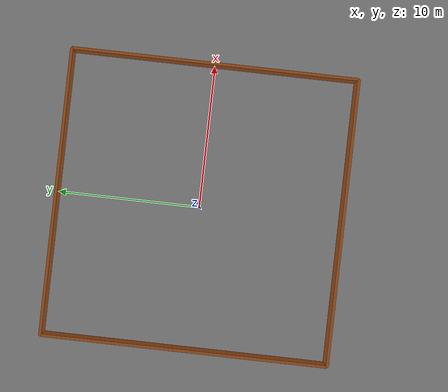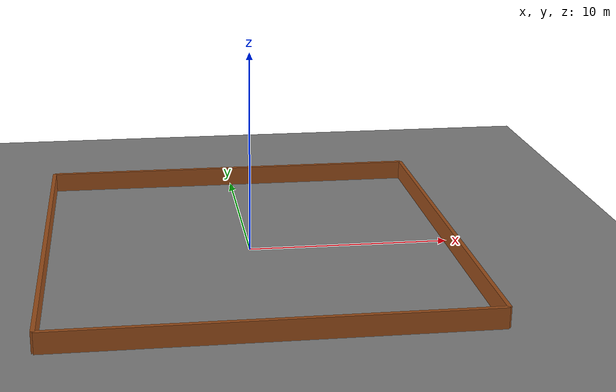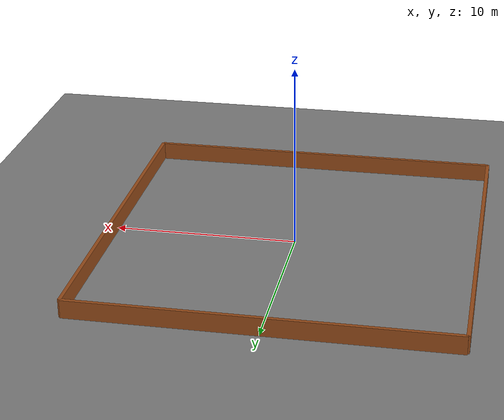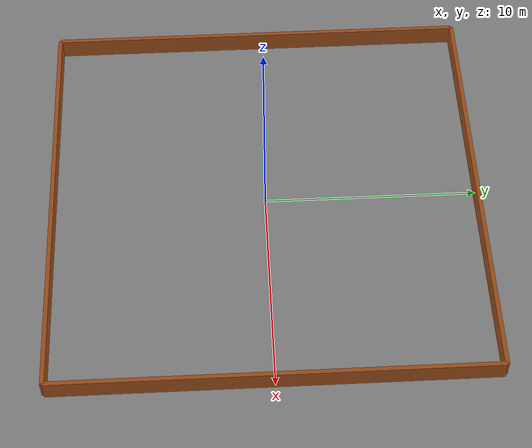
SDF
<?xml version="1.0" ?>
<!--
  Navigation Testbed World - Starter Template
  Module 2 Mini-Project 1

  TODO: Complete this world file to create a navigation testbed
-->
<sdf version="1.8">
  <world name="navigation_testbed">

    <!-- Physics Configuration -->
    <physics name="1ms" type="ignored">
      <max_step_size>0.001</max_step_size>
      <real_time_factor>1.0</real_time_factor>
    </physics>

    <!-- Plugins for ROS 2 Integration -->
    <plugin
      filename="gz-sim-physics-system"
      name="gz::sim::systems::Physics">
    </plugin>
    <plugin
      filename="gz-sim-user-commands-system"
      name="gz::sim::systems::UserCommands">
    </plugin>
    <plugin
      filename="gz-sim-scene-broadcaster-system"
      name="gz::sim::systems::SceneBroadcaster">
    </plugin>
    <plugin
      filename="gz-sim-sensors-system"
      name="gz::sim::systems::Sensors">
      <render_engine>ogre2</render_engine>
    </plugin>

    <!-- Lighting -->
    <light type="directional" name="sun">
      <cast_shadows>true</cast_shadows>
      <pose>0 0 10 0 0 0</pose>
      <diffuse>0.8 0.8 0.8 1</diffuse>
      <specular>0.2 0.2 0.2 1</specular>
      <direction>-0.5 0.1 -0.9</direction>
    </light>

    <!-- Ground Plane -->
    <model name="ground_plane">
      <static>true</static>
      <link name="link">
        <collision name="collision">
          <geometry>
            <plane>
              <normal>0 0 1</normal>
              <size>30 30</size>
            </plane>
          </geometry>
          <surface>
            <friction>
              <ode>
                <mu>0.8</mu>
                <mu2>0.8</mu2>
              </ode>
            </friction>
          </surface>
        </collision>
        <visual name="visual">
          <geometry>
            <plane>
              <normal>0 0 1</normal>
              <size>30 30</size>
            </plane>
          </geometry>
          <material>
            <ambient>0.3 0.3 0.3 1</ambient>
            <diffuse>0.5 0.5 0.5 1</diffuse>
          </material>
        </visual>
      </link>
    </model>

    <!-- TODO: Add Start Position Marker (Green) -->
    <!--
    Create a visual-only marker at position (-8, 0, 0)
    Use a cylinder (radius 0.3, height 0.1) with green color
    Set static=true and no collision
    -->

    <!-- TODO: Add Waypoint 1 Marker (Yellow) -->
    <!--
    Create a visual-only marker at position (-3, 3, 0)
    Use a cylinder (radius 0.3, height 0.1) with yellow color
    -->

    <!-- TODO: Add Waypoint 2 Marker (Yellow) -->
    <!--
    Create a visual-only marker at position (3, -2, 0)
    Use a cylinder (radius 0.3, height 0.1) with yellow color
    -->

    <!-- TODO: Add Goal Position Marker (Red) -->
    <!--
    Create a visual-only marker at position (8, 0, 0)
    Use a cylinder (radius 0.3, height 0.1) with red color
    -->

    <!-- TODO: Add Static Obstacle 1 - Box -->
    <!--
    Create a box obstacle at position (-5, 2, 0.5)
    Size: 1.0 x 1.0 x 1.0
    Include both collision and visual
    Set static=true
    -->

    <!-- TODO: Add Static Obstacle 2 - Cylinder -->
    <!--
    Create a cylinder obstacle at position (0, 0, 0.75)
    Radius: 0.5, Height: 1.5
    Include both collision and visual
    Set static=true
    -->

    <!-- TODO: Add Static Obstacle 3 - Wall -->
    <!--
    Create a wall at position (4, 3, 0.5)
    Size: 3.0 x 0.2 x 1.0
    Include both collision and visual
    Set static=true
    -->

    <!-- TODO: Add Static Obstacle 4 - Box -->
    <!--
    Create a box obstacle at position (6, -3, 0.4)
    Size: 0.8 x 0.8 x 0.8
    Include both collision and visual
    Set static=true
    -->

    <!-- TODO: Add Static Obstacle 5 - Cylinder -->
    <!--
    Create a cylinder obstacle at position (-2, -4, 0.5)
    Radius: 0.4, Height: 1.0
    Include both collision and visual
    Set static=true
    -->

    <!-- Boundary Walls (already implemented) -->
    <model name="boundary_north">
      <static>true</static>
      <pose>0 10 0.5 0 0 0</pose>
      <link name="link">
        <collision name="collision">
          <geometry>
            <box><size>20 0.2 1.0</size></box>
          </geometry>
        </collision>
        <visual name="visual">
          <geometry>
            <box><size>20 0.2 1.0</size></box>
          </geometry>
          <material>
            <ambient>0.4 0.2 0.1 1</ambient>
            <diffuse>0.6 0.3 0.1 1</diffuse>
          </material>
        </visual>
      </link>
    </model>

    <model name="boundary_south">
      <static>true</static>
      <pose>0 -10 0.5 0 0 0</pose>
      <link name="link">
        <collision name="collision">
          <geometry>
            <box><size>20 0.2 1.0</size></box>
          </geometry>
        </collision>
        <visual name="visual">
          <geometry>
            <box><size>20 0.2 1.0</size></box>
          </geometry>
          <material>
            <ambient>0.4 0.2 0.1 1</ambient>
            <diffuse>0.6 0.3 0.1 1</diffuse>
          </material>
        </visual>
      </link>
    </model>

    <model name="boundary_east">
      <static>true</static>
      <pose>10 0 0.5 0 0 1.5708</pose>
      <link name="link">
        <collision name="collision">
          <geometry>
            <box><size>20 0.2 1.0</size></box>
          </geometry>
        </collision>
        <visual name="visual">
          <geometry>
            <box><size>20 0.2 1.0</size></box>
          </geometry>
          <material>
            <ambient>0.4 0.2 0.1 1</ambient>
            <diffuse>0.6 0.3 0.1 1</diffuse>
          </material>
        </visual>
      </link>
    </model>

    <model name="boundary_west">
      <static>true</static>
      <pose>-10 0 0.5 0 0 1.5708</pose>
      <link name="link">
        <collision name="collision">
          <geometry>
            <box><size>20 0.2 1.0</size></box>
          </geometry>
        </collision>
        <visual name="visual">
          <geometry>
            <box><size>20 0.2 1.0</size></box>
          </geometry>
          <material>
            <ambient>0.4 0.2 0.1 1</ambient>
            <diffuse>0.6 0.3 0.1 1</diffuse>
          </material>
        </visual>
      </link>
    </model>

  </world>
</sdf>
